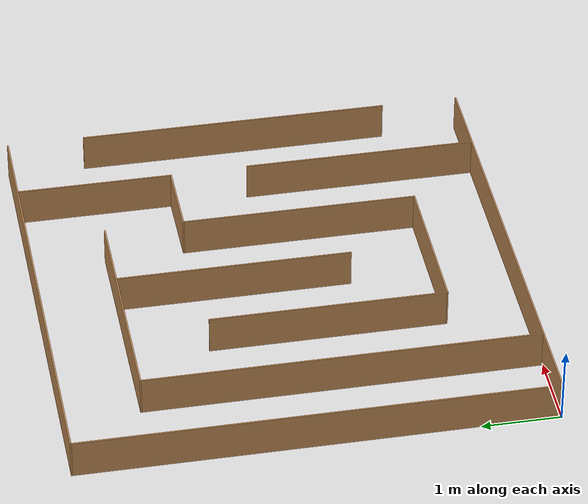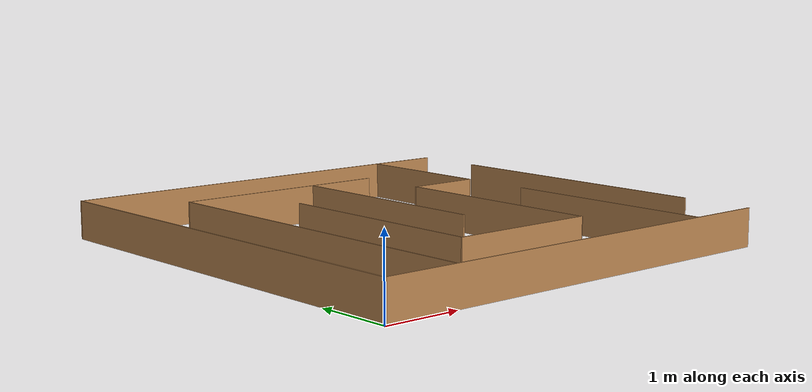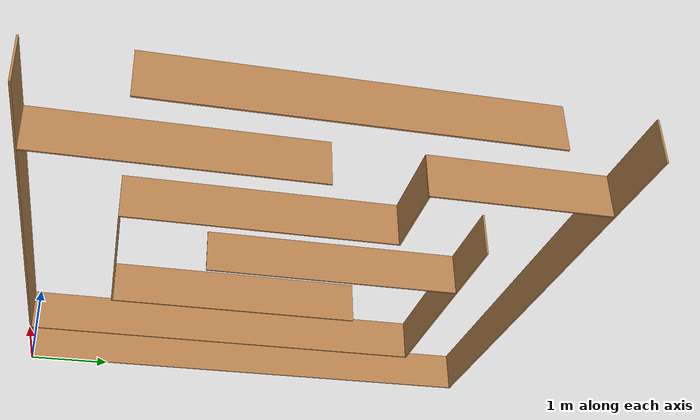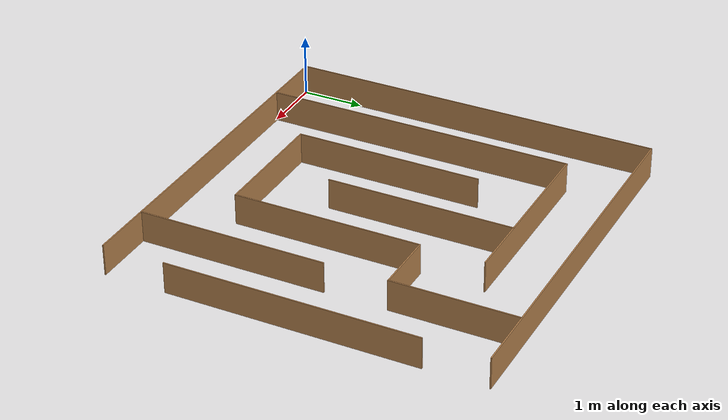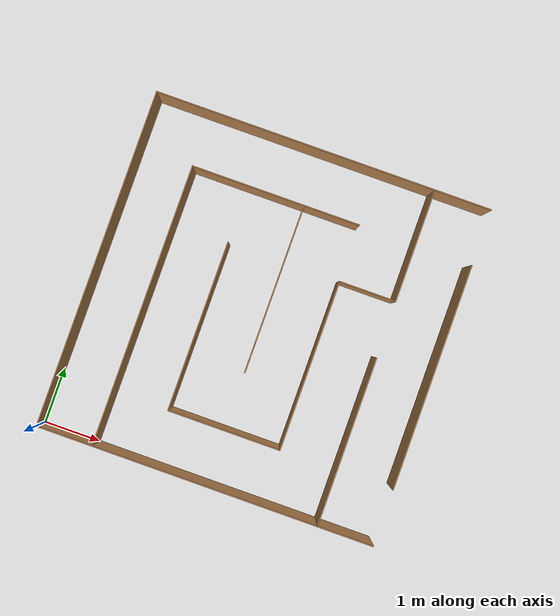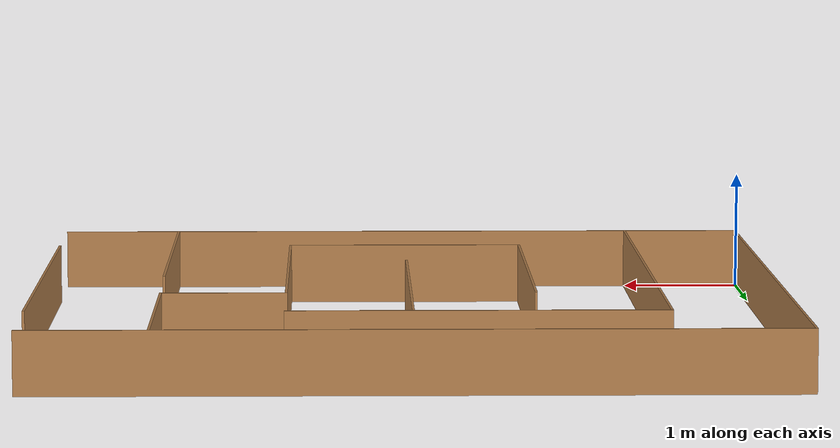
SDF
<?xml version='1.0'?>
<sdf version='1.6'>
  <model name='circuit3'>
    <pose frame=''>3.0056 3.00034 0 0 -0 0</pose>
    <link name='Wall_0'>
      <collision name='Wall_0_Collision'>
        <geometry>
          <box>
            <size>6 0.02 0.5</size>
          </box>
        </geometry>
        <pose frame=''>0 0 0.25 0 -0 0</pose>
      </collision>
      <visual name='Wall_0_Visual'>
        <pose frame=''>0 0 0.25 0 -0 0</pose>
        <geometry>
          <box>
            <size>6 0.02 0.5</size>
          </box>
        </geometry>
        <material>
          <script>
            <uri>file://media/materials/scripts/gazebo.material</uri>
            <name>Gazebo/Wood</name>
          </script>
          <ambient>1 1 1 1</ambient>
        </material>
        <meta>
          <layer>0</layer>
        </meta>
      </visual>
      <pose frame=''>-0.002027 -2.99023 0 0 -0 0</pose>
    </link>
    <link name='Wall_10'>
      <collision name='Wall_10_Collision'>
        <geometry>
          <box>
            <size>3 0.02 0.5</size>
          </box>
        </geometry>
        <pose frame=''>0 0 0.25 0 -0 0</pose>
      </collision>
      <visual name='Wall_10_Visual'>
        <pose frame=''>0 0 0.25 0 -0 0</pose>
        <geometry>
          <box>
            <size>3 0.02 0.5</size>
          </box>
        </geometry>
        <material>
          <script>
            <uri>file://media/materials/scripts/gazebo.material</uri>
            <name>Gazebo/Wood</name>
          </script>
          <ambient>1 1 1 1</ambient>
        </material>
        <meta>
          <layer>0</layer>
        </meta>
      </visual>
      <pose frame=''>-0.509249 2.00482 0 0 -0 0</pose>
    </link>
    <link name='Wall_12'>
      <collision name='Wall_12_Collision'>
        <geometry>
          <box>
            <size>3 0.02 0.5</size>
          </box>
        </geometry>
        <pose frame=''>0 0 0.25 0 -0 0</pose>
      </collision>
      <visual name='Wall_12_Visual'>
        <pose frame=''>0 0 0.25 0 -0 0</pose>
        <geometry>
          <box>
            <size>3 0.02 0.5</size>
          </box>
        </geometry>
        <material>
          <script>
            <uri>file://media/materials/scripts/gazebo.material</uri>
            <name>Gazebo/Wood</name>
          </script>
          <ambient>1 1 1 1</ambient>
        </material>
        <meta>
          <layer>0</layer>
        </meta>
      </visual>
      <pose frame=''>-0.00486 0.514774 0 0 -0 -1.5708</pose>
    </link>
    <link name='Wall_14'>
      <collision name='Wall_14_Collision'>
        <geometry>
          <box>
            <size>3 0.02 0.5</size>
          </box>
        </geometry>
        <pose frame=''>0 0 0.25 0 -0 0</pose>
      </collision>
      <visual name='Wall_14_Visual'>
        <pose frame=''>0 0 0.25 0 -0 0</pose>
        <geometry>
          <box>
            <size>3 0.02 0.5</size>
          </box>
        </geometry>
        <material>
          <script>
            <uri>file://media/materials/scripts/gazebo.material</uri>
            <name>Gazebo/Wood</name>
          </script>
          <ambient>1 1 1 1</ambient>
        </material>
        <meta>
          <layer>0</layer>
        </meta>
      </visual>
      <pose frame=''>-1.00244 -0.501621 0 0 -0 -1.5708</pose>
    </link>
    <link name='Wall_18'>
      <collision name='Wall_18_Collision'>
        <geometry>
          <box>
            <size>2 0.02 0.5</size>
          </box>
        </geometry>
        <pose frame=''>0 0 0.25 0 -0 0</pose>
      </collision>
      <visual name='Wall_18_Visual'>
        <pose frame=''>0 0 0.25 0 -0 0</pose>
        <geometry>
          <box>
            <size>2 0.02 0.5</size>
          </box>
        </geometry>
        <material>
          <script>
            <uri>file://media/materials/scripts/gazebo.material</uri>
            <name>Gazebo/Wood</name>
          </script>
          <ambient>1 1 1 1</ambient>
        </material>
        <meta>
          <layer>0</layer>
        </meta>
      </visual>
      <pose frame=''>-0.012571 -2.0042 0 0 -0 0</pose>
    </link>
    <link name='Wall_2'>
      <collision name='Wall_2_Collision'>
        <geometry>
          <box>
            <size>6 0.02 0.5</size>
          </box>
        </geometry>
        <pose frame=''>0 0 0.25 0 -0 0</pose>
      </collision>
      <visual name='Wall_2_Visual'>
        <pose frame=''>0 0 0.25 0 -0 0</pose>
        <geometry>
          <box>
            <size>6 0.02 0.5</size>
          </box>
        </geometry>
        <material>
          <script>
            <uri>file://media/materials/scripts/gazebo.material</uri>
            <name>Gazebo/Wood</name>
          </script>
          <ambient>1 1 1 1</ambient>
        </material>
        <meta>
          <layer>0</layer>
        </meta>
      </visual>
      <pose frame=''>-2.99272 -0.000659 0 0 -0 -1.5708</pose>
    </link>
    <link name='Wall_20'>
      <collision name='Wall_20_Collision'>
        <geometry>
          <box>
            <size>3 0.02 0.5</size>
          </box>
        </geometry>
        <pose frame=''>0 0 0.25 0 -0 0</pose>
      </collision>
      <visual name='Wall_20_Visual'>
        <pose frame=''>0 0 0.25 0 -0 0</pose>
        <geometry>
          <box>
            <size>3 0.02 0.5</size>
          </box>
        </geometry>
        <material>
          <script>
            <uri>file://media/materials/scripts/gazebo.material</uri>
            <name>Gazebo/Wood</name>
          </script>
          <ambient>1 1 1 1</ambient>
        </material>
        <meta>
          <layer>0</layer>
        </meta>
      </visual>
      <pose frame=''>0.986944 -0.513562 0 0 -0 -1.5708</pose>
    </link>
    <link name='Wall_22'>
      <collision name='Wall_22_Collision'>
        <geometry>
          <box>
            <size>1 0.02 0.5</size>
          </box>
        </geometry>
        <pose frame=''>0 0 0.25 0 -0 0</pose>
      </collision>
      <visual name='Wall_22_Visual'>
        <pose frame=''>0 0 0.25 0 -0 0</pose>
        <geometry>
          <box>
            <size>1 0.02 0.5</size>
          </box>
        </geometry>
        <material>
          <script>
            <uri>file://media/materials/scripts/gazebo.material</uri>
            <name>Gazebo/Wood</name>
          </script>
          <ambient>1 1 1 1</ambient>
        </material>
        <meta>
          <layer>0</layer>
        </meta>
      </visual>
      <pose frame=''>1.47692 0.996536 0 0 -0 0</pose>
    </link>
    <link name='Wall_24'>
      <collision name='Wall_24_Collision'>
        <geometry>
          <box>
            <size>2 0.02 0.5</size>
          </box>
        </geometry>
        <pose frame=''>0 0 0.25 0 -0 0</pose>
      </collision>
      <visual name='Wall_24_Visual'>
        <pose frame=''>0 0 0.25 0 -0 0</pose>
        <geometry>
          <box>
            <size>2 0.02 0.5</size>
          </box>
        </geometry>
        <material>
          <script>
            <uri>file://media/materials/scripts/gazebo.material</uri>
            <name>Gazebo/Wood</name>
          </script>
          <ambient>1 1 1 1</ambient>
        </material>
        <meta>
          <layer>0</layer>
        </meta>
      </visual>
      <pose frame=''>1.98493 1.98701 0 0 -0 -1.5708</pose>
    </link>
    <link name='Wall_26'>
      <collision name='Wall_26_Collision'>
        <geometry>
          <box>
            <size>3 0.02 0.5</size>
          </box>
        </geometry>
        <pose frame=''>0 0 0.25 0 -0 0</pose>
      </collision>
      <visual name='Wall_26_Visual'>
        <pose frame=''>0 0 0.25 0 -0 0</pose>
        <geometry>
          <box>
            <size>3 0.02 0.5</size>
          </box>
        </geometry>
        <material>
          <script>
            <uri>file://media/materials/scripts/gazebo.material</uri>
            <name>Gazebo/Wood</name>
          </script>
          <ambient>1 1 1 1</ambient>
        </material>
        <meta>
          <layer>0</layer>
        </meta>
      </visual>
      <pose frame=''>2.00073 -1.49941 0 0 -0 -1.5708</pose>
    </link>
    <link name='Wall_4'>
      <collision name='Wall_4_Collision'>
        <geometry>
          <box>
            <size>6 0.02 0.5</size>
          </box>
        </geometry>
        <pose frame=''>0 0 0.25 0 -0 0</pose>
      </collision>
      <visual name='Wall_4_Visual'>
        <pose frame=''>0 0 0.25 0 -0 0</pose>
        <geometry>
          <box>
            <size>6 0.02 0.5</size>
          </box>
        </geometry>
        <material>
          <script>
            <uri>file://media/materials/scripts/gazebo.material</uri>
            <name>Gazebo/Wood</name>
          </script>
          <ambient>1 1 1 1</ambient>
        </material>
        <meta>
          <layer>0</layer>
        </meta>
      </visual>
      <pose frame=''>-0.002944 2.99066 0 0 -0 0</pose>
    </link>
    <link name='Wall_6'>
      <collision name='Wall_6_Collision'>
        <geometry>
          <box>
            <size>4 0.02 0.5</size>
          </box>
        </geometry>
        <pose frame=''>0 0 0.25 0 -0 0</pose>
      </collision>
      <visual name='Wall_6_Visual'>
        <pose frame=''>0 0 0.25 0 -0 0</pose>
        <geometry>
          <box>
            <size>4 0.02 0.5</size>
          </box>
        </geometry>
        <material>
          <script>
            <uri>file://media/materials/scripts/gazebo.material</uri>
            <name>Gazebo/Wood</name>
          </script>
          <ambient>1 1 1 1</ambient>
        </material>
        <meta>
          <layer>0</layer>
        </meta>
      </visual>
      <pose frame=''>2.99294 0.000567 0 0 -0 -1.5708</pose>
    </link>
    <link name='Wall_8'>
      <collision name='Wall_8_Collision'>
        <geometry>
          <box>
            <size>5 0.02 0.5</size>
          </box>
        </geometry>
        <pose frame=''>0 0 0.25 0 -0 0</pose>
      </collision>
      <visual name='Wall_8_Visual'>
        <pose frame=''>0 0 0.25 0 -0 0</pose>
        <geometry>
          <box>
            <size>5 0.02 0.5</size>
          </box>
        </geometry>
        <material>
          <script>
            <uri>file://media/materials/scripts/gazebo.material</uri>
            <name>Gazebo/Wood</name>
          </script>
          <ambient>1 1 1 1</ambient>
        </material>
        <meta>
          <layer>0</layer>
        </meta>
      </visual>
      <pose frame=''>-1.99924 -0.497058 0 0 -0 -1.5708</pose>
    </link>
    <static>1</static>
  </model>
</sdf>
